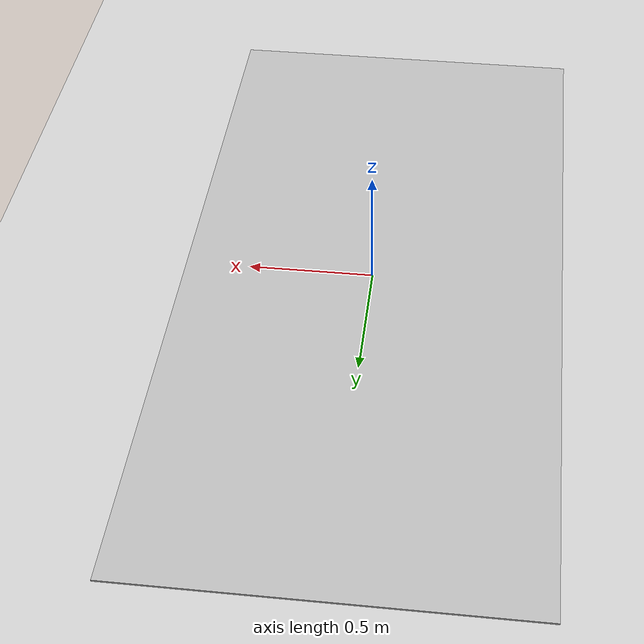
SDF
<?xml version="1.0"?>
<sdf version="1.4">
  <world name="default">
    <include>
      <uri>model://ground_plane</uri>
    </include>
    <include>
      <uri>model://sun</uri>
    </include>
    <model name="roundI">
      <pose>0 0 0  0 0 0</pose>
      <static>true</static>
      <link name="body">
        <visual name="visual">
          <geometry>
            <mesh><uri>$(find bot_description)/meshes/arena1.dae"</uri></mesh>
          </geometry>
        </visual>
      </link>
    </model>
  </world>
</sdf>
